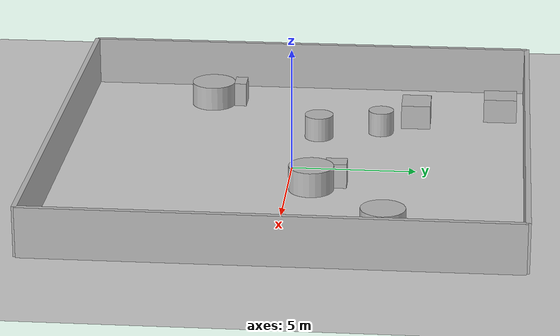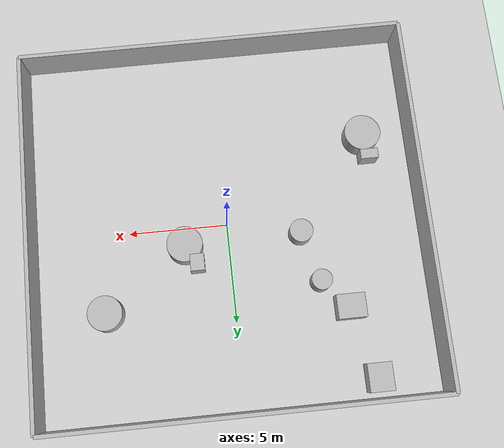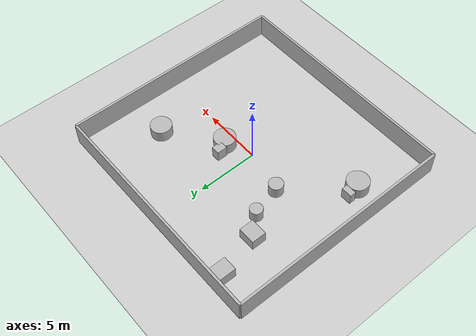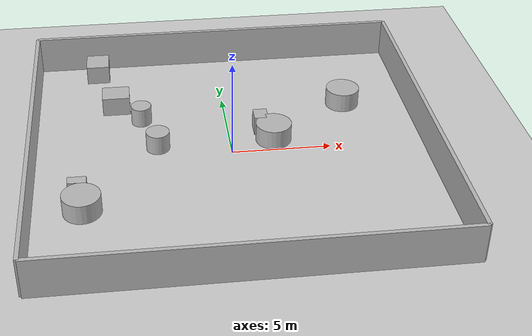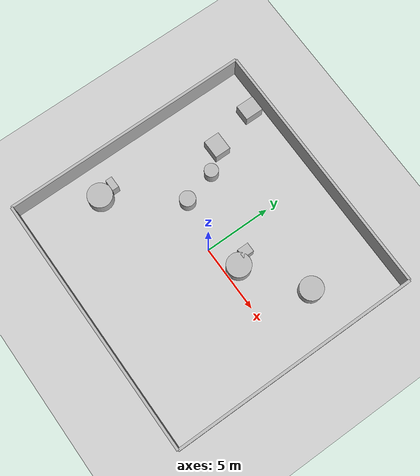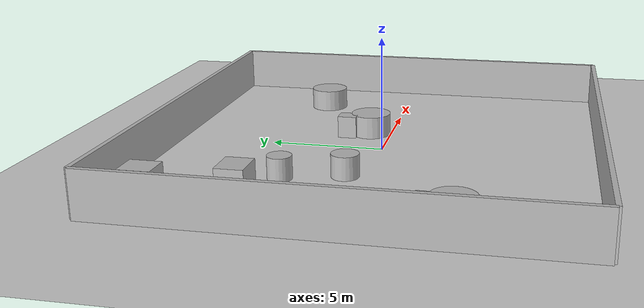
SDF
<?xml version="1.0"?>
<sdf version="1.6">
  <world name="env_48">

    <include><uri>model://ground_plane</uri></include>
    <include><uri>model://sun</uri></include>

    <!-- WALLS -->
    <model name="wall_north"><static>true</static><pose>0 9.401146366925438 1 0 0 0</pose>
      <link name="link"><collision name="collision">
        <geometry><box><size>19.649419386367143 0.2 2</size></box></geometry>
      </collision><visual name="visual">
        <geometry><box><size>19.649419386367143 0.2 2</size></box></geometry>
      </visual></link>
    </model>

    <model name="wall_south"><static>true</static><pose>0 -9.401146366925438 1 0 0 0</pose>
      <link name="link"><collision name="collision">
        <geometry><box><size>19.649419386367143 0.2 2</size></box></geometry>
      </collision><visual name="visual">
        <geometry><box><size>19.649419386367143 0.2 2</size></box></geometry>
      </visual></link>
    </model>

    <model name="wall_east"><static>true</static><pose>9.824709693183571 0 1 0 0 1.57</pose>
      <link name="link"><collision name="collision">
        <geometry><box><size>18.802292733850877 0.2 2</size></box></geometry>
      </collision><visual name="visual">
        <geometry><box><size>18.802292733850877 0.2 2</size></box></geometry>
      </visual></link>
    </model>

    <model name="wall_west"><static>true</static><pose>-9.824709693183571 0 1 0 0 1.57</pose>
      <link name="link"><collision name="collision">
        <geometry><box><size>18.802292733850877 0.2 2</size></box></geometry>
      </collision><visual name="visual">
        <geometry><box><size>18.802292733850877 0.2 2</size></box></geometry>
      </visual></link>
    </model>

    <!-- SENSOR -->

    <model name="lidar_sensor">
      <static>true</static>
      <pose>-3.0802387200866947 -5.624655694958395 0.4 0 0 0</pose>
      <link name="link">
        <sensor name="lidar" type="ray">
          <pose>0 0 0 0 0 0</pose>
          <visualize>true</visualize>
          <always_on>true</always_on>
          <update_rate>10</update_rate>
          <ray>
            <scan><horizontal>
              <samples>90</samples>
              <resolution>1</resolution>
              <min_angle>-3.14159</min_angle>
              <max_angle>3.14159</max_angle>
            </horizontal></scan>
            <range><min>0.15</min><max>20.0</max><resolution>0.01</resolution></range>
          </ray>
          <plugin name="lidar_plugin" filename="liblidar_plugin.so"/>
        </sensor>
      </link>
    </model>

    <!-- OBSTACLES -->

    <model name="obstacle_0">
      <static>true</static>
      <pose>-6.590135210802238 8.317637648676769 0.5 0 0 0</pose>
      <link name="link">
        <collision name="collision">
          <geometry><box><size>1.21 1.38 1.0</size></box></geometry>
        </collision>
        <visual name="visual">
          <geometry><box><size>1.21 1.38 1.0</size></box></geometry>
        </visual>
      </link>
    </model>

    <model name="obstacle_1">
      <static>true</static>
      <pose>2.2188687677699104 0.9478688199756515 0.5 0 0 0</pose>
      <link name="link">
        <collision name="collision">
          <geometry><cylinder><radius>0.9</radius><length>1.0</length></cylinder></geometry>
        </collision>
        <visual name="visual">
          <geometry><cylinder><radius>0.9</radius><length>1.0</length></cylinder></geometry>
        </visual>
      </link>
    </model>

    <model name="obstacle_2">
      <static>true</static>
      <pose>1.6727129371954597 1.9086923631074697 0.5 0 0 0</pose>
      <link name="link">
        <collision name="collision">
          <geometry><box><size>0.71 0.85 1.0</size></box></geometry>
        </collision>
        <visual name="visual">
          <geometry><box><size>0.71 0.85 1.0</size></box></geometry>
        </visual>
      </link>
    </model>

    <model name="obstacle_3">
      <static>true</static>
      <pose>-3.656478185115671 0.8260022597293215 0.5 0 0 0</pose>
      <link name="link">
        <collision name="collision">
          <geometry><cylinder><radius>0.59</radius><length>1.0</length></cylinder></geometry>
        </collision>
        <visual name="visual">
          <geometry><cylinder><radius>0.59</radius><length>1.0</length></cylinder></geometry>
        </visual>
      </link>
    </model>

    <model name="obstacle_4">
      <static>true</static>
      <pose>-4.38048009427856 3.372622495649729 0.5 0 0 0</pose>
      <link name="link">
        <collision name="collision">
          <geometry><cylinder><radius>0.52</radius><length>1.0</length></cylinder></geometry>
        </collision>
        <visual name="visual">
          <geometry><cylinder><radius>0.52</radius><length>1.0</length></cylinder></geometry>
        </visual>
      </link>
    </model>

    <model name="obstacle_5">
      <static>true</static>
      <pose>6.386295579555103 3.985995996290173 0.5 0 0 0</pose>
      <link name="link">
        <collision name="collision">
          <geometry><cylinder><radius>0.87</radius><length>1.0</length></cylinder></geometry>
        </collision>
        <visual name="visual">
          <geometry><cylinder><radius>0.87</radius><length>1.0</length></cylinder></geometry>
        </visual>
      </link>
    </model>

    <model name="obstacle_6">
      <static>true</static>
      <pose>-5.657590018965024 4.796914427328019 0.5 0 0 0</pose>
      <link name="link">
        <collision name="collision">
          <geometry><box><size>1.42 1.21 1.0</size></box></geometry>
        </collision>
        <visual name="visual">
          <geometry><box><size>1.42 1.21 1.0</size></box></geometry>
        </visual>
      </link>
    </model>

    <model name="obstacle_7">
      <static>true</static>
      <pose>-7.6019180537842335 -2.8275674230815806 0.5 0 0 0</pose>
      <link name="link">
        <collision name="collision">
          <geometry><box><size>0.9 0.51 1.0</size></box></geometry>
        </collision>
        <visual name="visual">
          <geometry><box><size>0.9 0.51 1.0</size></box></geometry>
        </visual>
      </link>
    </model>

    <model name="obstacle_8">
      <static>true</static>
      <pose>-7.397626900513636 -3.9872567337698026 0.5 0 0 0</pose>
      <link name="link">
        <collision name="collision">
          <geometry><cylinder><radius>0.92</radius><length>1.0</length></cylinder></geometry>
        </collision>
        <visual name="visual">
          <geometry><cylinder><radius>0.92</radius><length>1.0</length></cylinder></geometry>
        </visual>
      </link>
    </model>

  </world>
</sdf>
